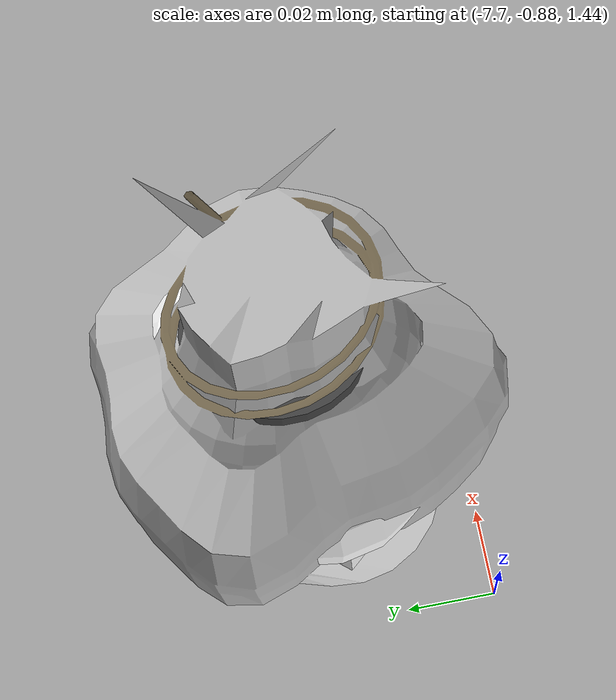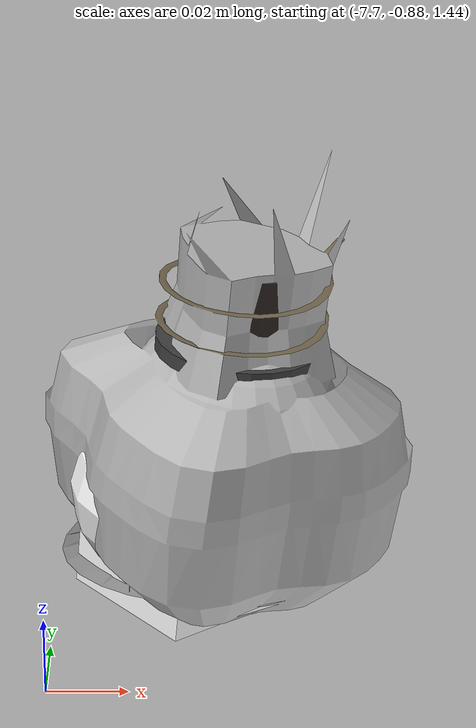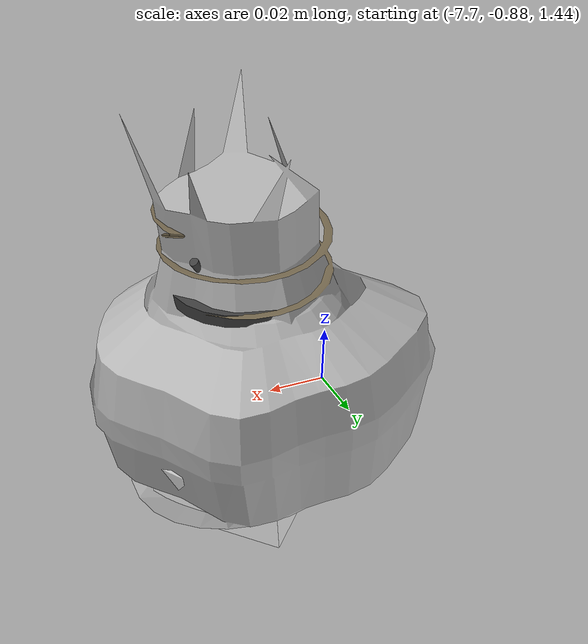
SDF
<sdf version="1.11">
 <world name="peach_orchard">
  <model name="ground">
   <static>true</static>
   <link name="link">
    <visual name="soil">
     <geometry><plane><normal>0 0 1</normal><size>32 22</size></plane></geometry>
     <material>
      <ambient>1 1 1 1</ambient>
      <diffuse>1 1 1 1</diffuse>
      <specular>0.1 0.1 0.1 1</specular>
      <pbr>
       <metal>
        <albedo_map>textures/soil_albedo.png</albedo_map>
        <normal_map type="tangent">textures/soil_normal.png</normal_map>
        <roughness>0.95</roughness>
        <metalness>0</metalness>
       </metal>
      </pbr>
     </material>
    </visual>
    <collision name="c_soil">
     <geometry><plane><normal>0 0 1</normal><size>32 22</size></plane></geometry>
    </collision>
   </link>
  </model>
  <model name="peach_tree_r0_t3_05">
   <pose>-7.65952 -0.841067 1.44817 0 0.098277 0.401308</pose>
   <static>true</static>
   <link name="bag">
    <visual name="bag_mesh">
     <pose>0 0 0.0450589 0 0 0</pose>
     <geometry>
      <mesh><uri>model://peach_sim/meshes/bagged_peach.glb</uri><scale>1.04155 1.24319 1.02407</scale></mesh>
     </geometry>
    </visual>
    <visual name="body">
     <pose>0 0 0.0270589 0 0 0</pose>
     <geometry><ellipsoid><radii>0.0390582 0.0323229 0.0292236</radii></ellipsoid></geometry>
     <material>
      <ambient>1 1 1 1</ambient>
      <diffuse>1 1 1 1</diffuse>
      <specular>0.1 0.1 0.1 1</specular>
      <pbr>
       <metal>
        <albedo_map>textures/paper_bag_albedo.png</albedo_map>
        <normal_map type="tangent">textures/paper_bag_normal.png</normal_map>
        <roughness>0.72</roughness>
        <metalness>0</metalness>
       </metal>
      </pbr>
     </material>
    </visual>
    <visual name="bottom_fold">
     <pose>0 0 0.012 0 0 0.35</pose>
     <geometry><box><size>0.0605403 0.0371714 0.022</size></box></geometry>
     <material>
      <ambient>1 1 1 1</ambient>
      <diffuse>1 1 1 1</diffuse>
      <specular>0.1 0.1 0.1 1</specular>
      <pbr>
       <metal>
        <albedo_map>textures/paper_bag_albedo.png</albedo_map>
        <normal_map type="tangent">textures/paper_bag_normal.png</normal_map>
        <roughness>0.8</roughness>
        <metalness>0</metalness>
       </metal>
      </pbr>
     </material>
    </visual>
    <visual name="fruit">
     <pose>0 0 0.0203046 0 0 0</pose>
     <geometry><sphere><radius>0.0273568</radius></sphere></geometry>
     <material>
      <ambient>1 1 1 1</ambient>
      <diffuse>1 1 1 1</diffuse>
      <specular>0.1 0.1 0.1 1</specular>
      <pbr>
       <metal>
        <albedo_map>textures/fruit_skin_albedo.png</albedo_map>
        <normal_map type="tangent">textures/fruit_skin_normal.png</normal_map>
        <roughness>0.55</roughness>
        <metalness>0</metalness>
       </metal>
      </pbr>
     </material>
    </visual>
    <visual name="neck">
     <pose>0 0 0.0631178 0 0 0</pose>
     <geometry><cylinder><radius>0.013</radius><length>0.018</length></cylinder></geometry>
     <material>
      <ambient>1 1 1 1</ambient>
      <diffuse>1 1 1 1</diffuse>
      <specular>0.1 0.1 0.1 1</specular>
      <pbr>
       <metal>
        <albedo_map>textures/paper_bag_albedo.png</albedo_map>
        <normal_map type="tangent">textures/paper_bag_normal.png</normal_map>
        <roughness>0.75</roughness>
        <metalness>0</metalness>
       </metal>
      </pbr>
     </material>
    </visual>
    <visual name="gather">
     <pose>0 0 0.0441178 0 0 0</pose>
     <geometry><cylinder><radius>0.019</radius><length>0.02</length></cylinder></geometry>
     <material>
      <ambient>1 1 1 1</ambient>
      <diffuse>1 1 1 1</diffuse>
      <specular>0.1 0.1 0.1 1</specular>
      <pbr>
       <metal>
        <albedo_map>textures/paper_bag_albedo.png</albedo_map>
        <normal_map type="tangent">textures/paper_bag_normal.png</normal_map>
        <roughness>0.8</roughness>
        <metalness>0</metalness>
       </metal>
      </pbr>
     </material>
    </visual>
    <visual name="inner_paper">
     <pose>0 0 0.0681178 0 0 0</pose>
     <geometry><cylinder><radius>0.01</radius><length>0.008</length></cylinder></geometry>
     <material>
      <ambient>0.180392 0.14902 0.133333 1</ambient>
      <diffuse>0.180392 0.14902 0.133333 1</diffuse>
      <specular>0.1 0.1 0.1 1</specular>
     </material>
    </visual>
    <visual name="wire_0">
     <pose>0 0 0.0581178 0 0 0</pose>
     <geometry><cylinder><radius>0.0205</radius><length>0.0035</length></cylinder></geometry>
     <material>
      <ambient>0.25 0.25 0.25 1</ambient>
      <diffuse>0.25 0.25 0.25 1</diffuse>
      <specular>0.1 0.1 0.1 1</specular>
     </material>
    </visual>
    <visual name="wire_1">
     <pose>0 0 0.0651178 0 0 0</pose>
     <geometry><cylinder><radius>0.0205</radius><length>0.0035</length></cylinder></geometry>
     <material>
      <ambient>0.25 0.25 0.25 1</ambient>
      <diffuse>0.25 0.25 0.25 1</diffuse>
      <specular>0.1 0.1 0.1 1</specular>
     </material>
    </visual>
    <visual name="wire_tail">
     <pose>0.01 0 0.0661178 0 0.521618 0</pose>
     <geometry><cylinder><radius>0.0012</radius><length>0.026</length></cylinder></geometry>
     <material>
      <ambient>0.25 0.25 0.25 1</ambient>
      <diffuse>0.25 0.25 0.25 1</diffuse>
      <specular>0.1 0.1 0.1 1</specular>
     </material>
    </visual>
    <collision name="c_body">
     <pose>0 0 0.0270589 0 0 0</pose>
     <geometry><cylinder><radius>0.0390582</radius><length>0.0541178</length></cylinder></geometry>
    </collision>
   </link>
  </model>
 </world>
</sdf>
